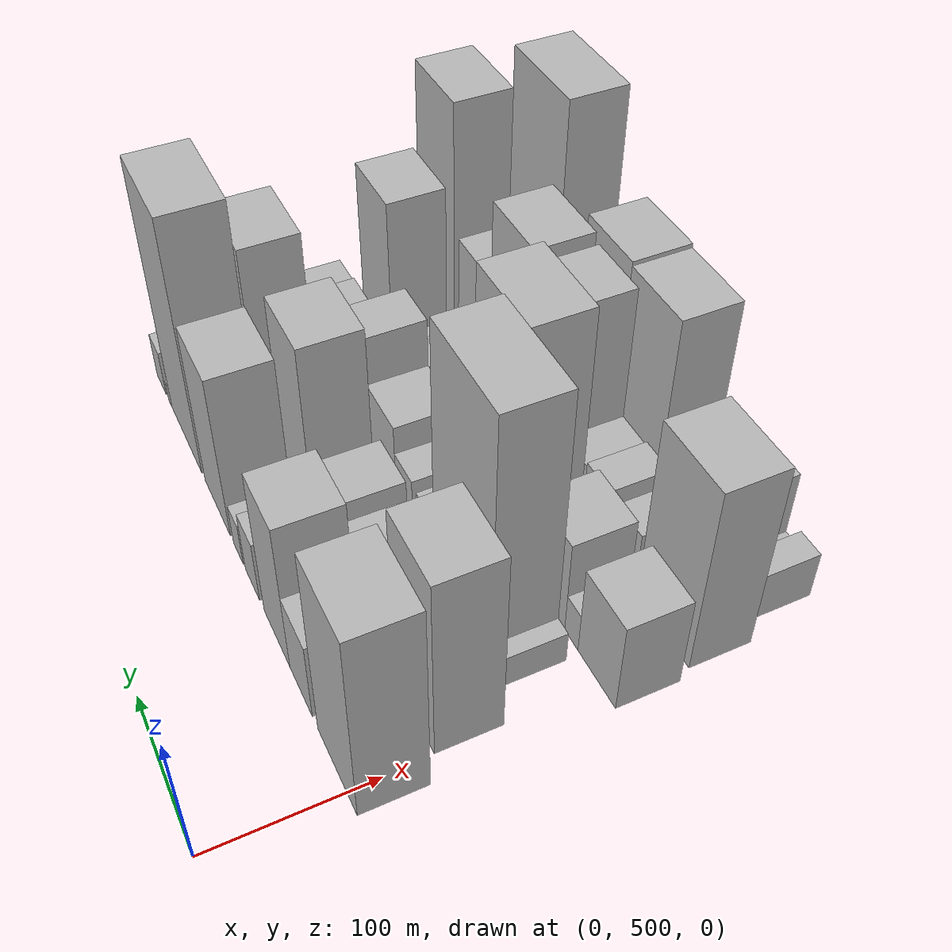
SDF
<sdf version="1.6">
 <world name="default">
  <model name="building_38">
   <static>1</static>
   <pose>100.0000 513.2755 0 0.000000 0.000000 0.000000</pose>
   <link name="link">
    <pose>0 0 72.00 0 0 0</pose>
    <collision name="collision"><geometry><box><size>40.0000 54.6386 144.0000</size></box></geometry></collision>
    <visual name="visual">
     <cast_shadows>0</cast_shadows>
     <geometry><box><size>40.0000 54.6386 144.0000</size></box></geometry>
     <material>
      <script>
       <uri>model://HANNAS_wall/materials/scripts</uri>
       <uri>model://HANNAS_wall/materials/textures</uri>
       <name>vrc/HANNAS_wall</name>
      </script>
     </material>
    </visual>
   </link>
  </model>
  <model name="building_39">
   <static>1</static>
   <pose>100.0000 565.7415 0 0.000000 0.000000 0.000000</pose>
   <link name="link">
    <pose>0 0 30.00 0 0 0</pose>
    <collision name="collision"><geometry><box><size>40.0000 34.2933 60.0000</size></box></geometry></collision>
    <visual name="visual">
     <cast_shadows>0</cast_shadows>
     <geometry><box><size>40.0000 34.2933 60.0000</size></box></geometry>
     <material>
      <script>
       <uri>model://HANNAS_wall/materials/scripts</uri>
       <uri>model://HANNAS_wall/materials/textures</uri>
       <name>vrc/HANNAS_wall</name>
      </script>
     </material>
    </visual>
   </link>
  </model>
  <model name="building_40">
   <static>1</static>
   <pose>100.0000 603.8647 0 0.000000 0.000000 0.000000</pose>
   <link name="link">
    <pose>0 0 57.00 0 0 0</pose>
    <collision name="collision"><geometry><box><size>40.0000 41.9532 114.0000</size></box></geometry></collision>
    <visual name="visual">
     <cast_shadows>0</cast_shadows>
     <geometry><box><size>40.0000 41.9532 114.0000</size></box></geometry>
     <material>
      <script>
       <uri>model://HANNAS_wall/materials/scripts</uri>
       <uri>model://HANNAS_wall/materials/textures</uri>
       <name>vrc/HANNAS_wall</name>
      </script>
     </material>
    </visual>
   </link>
  </model>
  <model name="building_41">
   <static>1</static>
   <pose>100.0000 645.3330 0 0.000000 0.000000 0.000000</pose>
   <link name="link">
    <pose>0 0 24.00 0 0 0</pose>
    <collision name="collision"><geometry><box><size>40.0000 24.9834 48.0000</size></box></geometry></collision>
    <visual name="visual">
     <cast_shadows>0</cast_shadows>
     <geometry><box><size>40.0000 24.9834 48.0000</size></box></geometry>
     <material>
      <script>
       <uri>model://HANNAS_wall/materials/scripts</uri>
       <uri>model://HANNAS_wall/materials/textures</uri>
       <name>vrc/HANNAS_wall</name>
      </script>
     </material>
    </visual>
   </link>
  </model>
  <model name="building_42">
   <static>1</static>
   <pose>100.0000 670.6582 0 0.000000 0.000000 0.000000</pose>
   <link name="link">
    <pose>0 0 16.50 0 0 0</pose>
    <collision name="collision"><geometry><box><size>40.0000 17.6672 33.0000</size></box></geometry></collision>
    <visual name="visual">
     <cast_shadows>0</cast_shadows>
     <geometry><box><size>40.0000 17.6672 33.0000</size></box></geometry>
     <material>
      <script>
       <uri>model://HANNAS_wall/materials/scripts</uri>
       <uri>model://HANNAS_wall/materials/textures</uri>
       <name>vrc/HANNAS_wall</name>
      </script>
     </material>
    </visual>
   </link>
  </model>
  <model name="building_43">
   <static>1</static>
   <pose>100.0000 710.0703 0 0.000000 0.000000 0.000000</pose>
   <link name="link">
    <pose>0 0 63.00 0 0 0</pose>
    <collision name="collision"><geometry><box><size>40.0000 49.1570 126.0000</size></box></geometry></collision>
    <visual name="visual">
     <cast_shadows>0</cast_shadows>
     <geometry><box><size>40.0000 49.1570 126.0000</size></box></geometry>
     <material>
      <script>
       <uri>model://HANNAS_wall/materials/scripts</uri>
       <uri>model://HANNAS_wall/materials/textures</uri>
       <name>vrc/HANNAS_wall</name>
      </script>
     </material>
    </visual>
   </link>
  </model>
  <model name="building_44">
   <static>1</static>
   <pose>100.0000 773.9399 0 0.000000 0.000000 0.000000</pose>
   <link name="link">
    <pose>0 0 97.50 0 0 0</pose>
    <collision name="collision"><geometry><box><size>40.0000 64.5821 195.0000</size></box></geometry></collision>
    <visual name="visual">
     <cast_shadows>0</cast_shadows>
     <geometry><box><size>40.0000 64.5821 195.0000</size></box></geometry>
     <material>
      <script>
       <uri>model://HANNAS_wall/materials/scripts</uri>
       <uri>model://HANNAS_wall/materials/textures</uri>
       <name>vrc/HANNAS_wall</name>
      </script>
     </material>
    </visual>
   </link>
  </model>
  <model name="building_45">
   <static>1</static>
   <pose>100.0000 810.0707 0 0.000000 0.000000 0.000000</pose>
   <link name="link">
    <pose>0 0 9.00 0 0 0</pose>
    <collision name="collision"><geometry><box><size>40.0000 7.6796 18.0000</size></box></geometry></collision>
    <visual name="visual">
     <cast_shadows>0</cast_shadows>
     <geometry><box><size>40.0000 7.6796 18.0000</size></box></geometry>
     <material>
      <script>
       <uri>model://HANNAS_wall/materials/scripts</uri>
       <uri>model://HANNAS_wall/materials/textures</uri>
       <name>vrc/HANNAS_wall</name>
      </script>
     </material>
    </visual>
   </link>
  </model>
  <model name="building_46">
   <static>1</static>
   <pose>100.0000 830.4887 0 0.000000 0.000000 0.000000</pose>
   <link name="link">
    <pose>0 0 18.00 0 0 0</pose>
    <collision name="collision"><geometry><box><size>40.0000 21.1564 36.0000</size></box></geometry></collision>
    <visual name="visual">
     <cast_shadows>0</cast_shadows>
     <geometry><box><size>40.0000 21.1564 36.0000</size></box></geometry>
     <material>
      <script>
       <uri>model://HANNAS_wall/materials/scripts</uri>
       <uri>model://HANNAS_wall/materials/textures</uri>
       <name>vrc/HANNAS_wall</name>
      </script>
     </material>
    </visual>
   </link>
  </model>
  <model name="building_86">
   <static>1</static>
   <pose>149.0000 526.6058 0 0.000000 0.000000 0.000000</pose>
   <link name="link">
    <pose>0 0 69.00 0 0 0</pose>
    <collision name="collision"><geometry><box><size>40.0000 51.0138 138.0000</size></box></geometry></collision>
    <visual name="visual">
     <cast_shadows>0</cast_shadows>
     <geometry><box><size>40.0000 51.0138 138.0000</size></box></geometry>
     <material>
      <script>
       <uri>model://HANNAS_wall/materials/scripts</uri>
       <uri>model://HANNAS_wall/materials/textures</uri>
       <name>vrc/HANNAS_wall</name>
      </script>
     </material>
    </visual>
   </link>
  </model>
  <model name="building_87">
   <static>1</static>
   <pose>149.0000 564.9639 0 0.000000 0.000000 0.000000</pose>
   <link name="link">
    <pose>0 0 10.50 0 0 0</pose>
    <collision name="collision"><geometry><box><size>40.0000 9.7024 21.0000</size></box></geometry></collision>
    <visual name="visual">
     <cast_shadows>0</cast_shadows>
     <geometry><box><size>40.0000 9.7024 21.0000</size></box></geometry>
     <material>
      <script>
       <uri>model://HANNAS_wall/materials/scripts</uri>
       <uri>model://HANNAS_wall/materials/textures</uri>
       <name>vrc/HANNAS_wall</name>
      </script>
     </material>
    </visual>
   </link>
  </model>
  <model name="building_88">
   <static>1</static>
   <pose>149.0000 578.7246 0 0.000000 0.000000 0.000000</pose>
   <link name="link">
    <pose>0 0 15.00 0 0 0</pose>
    <collision name="collision"><geometry><box><size>40.0000 17.8191 30.0000</size></box></geometry></collision>
    <visual name="visual">
     <cast_shadows>0</cast_shadows>
     <geometry><box><size>40.0000 17.8191 30.0000</size></box></geometry>
     <material>
      <script>
       <uri>model://HANNAS_wall/materials/scripts</uri>
       <uri>model://HANNAS_wall/materials/textures</uri>
       <name>vrc/HANNAS_wall</name>
      </script>
     </material>
    </visual>
   </link>
  </model>
  <model name="building_89">
   <static>1</static>
   <pose>149.0000 610.0657 0 0.000000 0.000000 0.000000</pose>
   <link name="link">
    <pose>0 0 25.50 0 0 0</pose>
    <collision name="collision"><geometry><box><size>40.0000 28.8632 51.0000</size></box></geometry></collision>
    <visual name="visual">
     <cast_shadows>0</cast_shadows>
     <geometry><box><size>40.0000 28.8632 51.0000</size></box></geometry>
     <material>
      <script>
       <uri>model://HANNAS_wall/materials/scripts</uri>
       <uri>model://HANNAS_wall/materials/textures</uri>
       <name>vrc/HANNAS_wall</name>
      </script>
     </material>
    </visual>
   </link>
  </model>
  <model name="building_90">
   <static>1</static>
   <pose>149.0000 642.5015 0 0.000000 0.000000 0.000000</pose>
   <link name="link">
    <pose>0 0 33.00 0 0 0</pose>
    <collision name="collision"><geometry><box><size>40.0000 36.0083 66.0000</size></box></geometry></collision>
    <visual name="visual">
     <cast_shadows>0</cast_shadows>
     <geometry><box><size>40.0000 36.0083 66.0000</size></box></geometry>
     <material>
      <script>
       <uri>model://HANNAS_wall/materials/scripts</uri>
       <uri>model://HANNAS_wall/materials/textures</uri>
       <name>vrc/HANNAS_wall</name>
      </script>
     </material>
    </visual>
   </link>
  </model>
  <model name="building_91">
   <static>1</static>
   <pose>149.0000 664.7505 0 0.000000 0.000000 0.000000</pose>
   <link name="link">
    <pose>0 0 9.00 0 0 0</pose>
    <collision name="collision"><geometry><box><size>40.0000 8.4897 18.0000</size></box></geometry></collision>
    <visual name="visual">
     <cast_shadows>0</cast_shadows>
     <geometry><box><size>40.0000 8.4897 18.0000</size></box></geometry>
     <material>
      <script>
       <uri>model://HANNAS_wall/materials/scripts</uri>
       <uri>model://HANNAS_wall/materials/textures</uri>
       <name>vrc/HANNAS_wall</name>
      </script>
     </material>
    </visual>
   </link>
  </model>
  <model name="building_92">
   <static>1</static>
   <pose>149.0000 699.7380 0 0.000000 0.000000 0.000000</pose>
   <link name="link">
    <pose>0 0 69.00 0 0 0</pose>
    <collision name="collision"><geometry><box><size>40.0000 49.4853 138.0000</size></box></geometry></collision>
    <visual name="visual">
     <cast_shadows>0</cast_shadows>
     <geometry><box><size>40.0000 49.4853 138.0000</size></box></geometry>
     <material>
      <script>
       <uri>model://HANNAS_wall/materials/scripts</uri>
       <uri>model://HANNAS_wall/materials/textures</uri>
       <name>vrc/HANNAS_wall</name>
      </script>
     </material>
    </visual>
   </link>
  </model>
  <model name="building_93">
   <static>1</static>
   <pose>149.0000 738.8691 0 0.000000 0.000000 0.000000</pose>
   <link name="link">
    <pose>0 0 24.00 0 0 0</pose>
    <collision name="collision"><geometry><box><size>40.0000 28.7769 48.0000</size></box></geometry></collision>
    <visual name="visual">
     <cast_shadows>0</cast_shadows>
     <geometry><box><size>40.0000 28.7769 48.0000</size></box></geometry>
     <material>
      <script>
       <uri>model://HANNAS_wall/materials/scripts</uri>
       <uri>model://HANNAS_wall/materials/textures</uri>
       <name>vrc/HANNAS_wall</name>
      </script>
     </material>
    </visual>
   </link>
  </model>
  <model name="building_94">
   <static>1</static>
   <pose>149.0000 764.1634 0 0.000000 0.000000 0.000000</pose>
   <link name="link">
    <pose>0 0 9.00 0 0 0</pose>
    <collision name="collision"><geometry><box><size>40.0000 7.8117 18.0000</size></box></geometry></collision>
    <visual name="visual">
     <cast_shadows>0</cast_shadows>
     <geometry><box><size>40.0000 7.8117 18.0000</size></box></geometry>
     <material>
      <script>
       <uri>model://HANNAS_wall/materials/scripts</uri>
       <uri>model://HANNAS_wall/materials/textures</uri>
       <name>vrc/HANNAS_wall</name>
      </script>
     </material>
    </visual>
   </link>
  </model>
  <model name="building_95">
   <static>1</static>
   <pose>149.0000 800.6272 0 0.000000 0.000000 0.000000</pose>
   <link name="link">
    <pose>0 0 67.50 0 0 0</pose>
    <collision name="collision"><geometry><box><size>40.0000 53.1159 135.0000</size></box></geometry></collision>
    <visual name="visual">
     <cast_shadows>0</cast_shadows>
     <geometry><box><size>40.0000 53.1159 135.0000</size></box></geometry>
     <material>
      <script>
       <uri>model://HANNAS_wall/materials/scripts</uri>
       <uri>model://HANNAS_wall/materials/textures</uri>
       <name>vrc/HANNAS_wall</name>
      </script>
     </material>
    </visual>
   </link>
  </model>
  <model name="building_96">
   <static>1</static>
   <pose>149.0000 844.7569 0 0.000000 0.000000 0.000000</pose>
   <link name="link">
    <pose>0 0 31.50 0 0 0</pose>
    <collision name="collision"><geometry><box><size>40.0000 35.1435 63.0000</size></box></geometry></collision>
    <visual name="visual">
     <cast_shadows>0</cast_shadows>
     <geometry><box><size>40.0000 35.1435 63.0000</size></box></geometry>
     <material>
      <script>
       <uri>model://HANNAS_wall/materials/scripts</uri>
       <uri>model://HANNAS_wall/materials/textures</uri>
       <name>vrc/HANNAS_wall</name>
      </script>
     </material>
    </visual>
   </link>
  </model>
  <model name="building_139">
   <static>1</static>
   <pose>198.0000 528.4345 0 0.000000 0.000000 0.000000</pose>
   <link name="link">
    <pose>0 0 12.00 0 0 0</pose>
    <collision name="collision"><geometry><box><size>40.0000 11.4349 24.0000</size></box></geometry></collision>
    <visual name="visual">
     <cast_shadows>0</cast_shadows>
     <geometry><box><size>40.0000 11.4349 24.0000</size></box></geometry>
     <material>
      <script>
       <uri>model://HANNAS_wall/materials/scripts</uri>
       <uri>model://HANNAS_wall/materials/textures</uri>
       <name>vrc/HANNAS_wall</name>
      </script>
     </material>
    </visual>
   </link>
  </model>
  <model name="building_140">
   <static>1</static>
   <pose>198.0000 571.3105 0 0.000000 0.000000 0.000000</pose>
   <link name="link">
    <pose>0 0 97.50 0 0 0</pose>
    <collision name="collision"><geometry><box><size>40.0000 74.3170 195.0000</size></box></geometry></collision>
    <visual name="visual">
     <cast_shadows>0</cast_shadows>
     <geometry><box><size>40.0000 74.3170 195.0000</size></box></geometry>
     <material>
      <script>
       <uri>model://HANNAS_wall/materials/scripts</uri>
       <uri>model://HANNAS_wall/materials/textures</uri>
       <name>vrc/HANNAS_wall</name>
      </script>
     </material>
    </visual>
   </link>
  </model>
  <model name="building_141">
   <static>1</static>
   <pose>198.0000 620.4138 0 0.000000 0.000000 0.000000</pose>
   <link name="link">
    <pose>0 0 22.50 0 0 0</pose>
    <collision name="collision"><geometry><box><size>40.0000 23.8895 45.0000</size></box></geometry></collision>
    <visual name="visual">
     <cast_shadows>0</cast_shadows>
     <geometry><box><size>40.0000 23.8895 45.0000</size></box></geometry>
     <material>
      <script>
       <uri>model://HANNAS_wall/materials/scripts</uri>
       <uri>model://HANNAS_wall/materials/textures</uri>
       <name>vrc/HANNAS_wall</name>
      </script>
     </material>
    </visual>
   </link>
  </model>
  <model name="building_142">
   <static>1</static>
   <pose>198.0000 650.6775 0 0.000000 0.000000 0.000000</pose>
   <link name="link">
    <pose>0 0 24.00 0 0 0</pose>
    <collision name="collision"><geometry><box><size>40.0000 24.6379 48.0000</size></box></geometry></collision>
    <visual name="visual">
     <cast_shadows>0</cast_shadows>
     <geometry><box><size>40.0000 24.6379 48.0000</size></box></geometry>
     <material>
      <script>
       <uri>model://HANNAS_wall/materials/scripts</uri>
       <uri>model://HANNAS_wall/materials/textures</uri>
       <name>vrc/HANNAS_wall</name>
      </script>
     </material>
    </visual>
   </link>
  </model>
  <model name="building_143">
   <static>1</static>
   <pose>198.0000 682.9503 0 0.000000 0.000000 0.000000</pose>
   <link name="link">
    <pose>0 0 34.50 0 0 0</pose>
    <collision name="collision"><geometry><box><size>40.0000 39.9077 69.0000</size></box></geometry></collision>
    <visual name="visual">
     <cast_shadows>0</cast_shadows>
     <geometry><box><size>40.0000 39.9077 69.0000</size></box></geometry>
     <material>
      <script>
       <uri>model://HANNAS_wall/materials/scripts</uri>
       <uri>model://HANNAS_wall/materials/textures</uri>
       <name>vrc/HANNAS_wall</name>
      </script>
     </material>
    </visual>
   </link>
  </model>
  <model name="building_144">
   <static>1</static>
   <pose>198.0000 718.8306 0 0.000000 0.000000 0.000000</pose>
   <link name="link">
    <pose>0 0 52.50 0 0 0</pose>
    <collision name="collision"><geometry><box><size>40.0000 31.8530 105.0000</size></box></geometry></collision>
    <visual name="visual">
     <cast_shadows>0</cast_shadows>
     <geometry><box><size>40.0000 31.8530 105.0000</size></box></geometry>
     <material>
      <script>
       <uri>model://HANNAS_wall/materials/scripts</uri>
       <uri>model://HANNAS_wall/materials/textures</uri>
       <name>vrc/HANNAS_wall</name>
      </script>
     </material>
    </visual>
   </link>
  </model>
  <model name="building_145">
   <static>1</static>
   <pose>198.0000 758.7041 0 0.000000 0.000000 0.000000</pose>
   <link name="link">
    <pose>0 0 33.00 0 0 0</pose>
    <collision name="collision"><geometry><box><size>40.0000 33.8938 66.0000</size></box></geometry></collision>
    <visual name="visual">
     <cast_shadows>0</cast_shadows>
     <geometry><box><size>40.0000 33.8938 66.0000</size></box></geometry>
     <material>
      <script>
       <uri>model://HANNAS_wall/materials/scripts</uri>
       <uri>model://HANNAS_wall/materials/textures</uri>
       <name>vrc/HANNAS_wall</name>
      </script>
     </material>
    </visual>
   </link>
  </model>
  <model name="building_146">
   <static>1</static>
   <pose>198.0000 786.6046 0 0.000000 0.000000 0.000000</pose>
   <link name="link">
    <pose>0 0 21.00 0 0 0</pose>
    <collision name="collision"><geometry><box><size>40.0000 21.9072 42.0000</size></box></geometry></collision>
    <visual name="visual">
     <cast_shadows>0</cast_shadows>
     <geometry><box><size>40.0000 21.9072 42.0000</size></box></geometry>
     <material>
      <script>
       <uri>model://HANNAS_wall/materials/scripts</uri>
       <uri>model://HANNAS_wall/materials/textures</uri>
       <name>vrc/HANNAS_wall</name>
      </script>
     </material>
    </visual>
   </link>
  </model>
  <model name="building_147">
   <static>1</static>
   <pose>198.0000 810.8468 0 0.000000 0.000000 0.000000</pose>
   <link name="link">
    <pose>0 0 24.00 0 0 0</pose>
    <collision name="collision"><geometry><box><size>40.0000 26.5773 48.0000</size></box></geometry></collision>
    <visual name="visual">
     <cast_shadows>0</cast_shadows>
     <geometry><box><size>40.0000 26.5773 48.0000</size></box></geometry>
     <material>
      <script>
       <uri>model://HANNAS_wall/materials/scripts</uri>
       <uri>model://HANNAS_wall/materials/textures</uri>
       <name>vrc/HANNAS_wall</name>
      </script>
     </material>
    </visual>
   </link>
  </model>
  <model name="building_148">
   <static>1</static>
   <pose>198.0000 837.0912 0 0.000000 0.000000 0.000000</pose>
   <link name="link">
    <pose>0 0 22.50 0 0 0</pose>
    <collision name="collision"><geometry><box><size>40.0000 25.9115 45.0000</size></box></geometry></collision>
    <visual name="visual">
     <cast_shadows>0</cast_shadows>
     <geometry><box><size>40.0000 25.9115 45.0000</size></box></geometry>
     <material>
      <script>
       <uri>model://HANNAS_wall/materials/scripts</uri>
       <uri>model://HANNAS_wall/materials/textures</uri>
       <name>vrc/HANNAS_wall</name>
      </script>
     </material>
    </visual>
   </link>
  </model>
  <model name="building_190">
   <static>1</static>
   <pose>247.0000 505.2227 0 0.000000 0.000000 0.000000</pose>
   <link name="link">
    <pose>0 0 34.50 0 0 0</pose>
    <collision name="collision"><geometry><box><size>40.0000 41.0361 69.0000</size></box></geometry></collision>
    <visual name="visual">
     <cast_shadows>0</cast_shadows>
     <geometry><box><size>40.0000 41.0361 69.0000</size></box></geometry>
     <material>
      <script>
       <uri>model://HANNAS_wall/materials/scripts</uri>
       <uri>model://HANNAS_wall/materials/textures</uri>
       <name>vrc/HANNAS_wall</name>
      </script>
     </material>
    </visual>
   </link>
  </model>
  <model name="building_191">
   <static>1</static>
   <pose>247.0000 533.3025 0 0.000000 0.000000 0.000000</pose>
   <link name="link">
    <pose>0 0 15.00 0 0 0</pose>
    <collision name="collision"><geometry><box><size>40.0000 15.1236 30.0000</size></box></geometry></collision>
    <visual name="visual">
     <cast_shadows>0</cast_shadows>
     <geometry><box><size>40.0000 15.1236 30.0000</size></box></geometry>
     <material>
      <script>
       <uri>model://HANNAS_wall/materials/scripts</uri>
       <uri>model://HANNAS_wall/materials/textures</uri>
       <name>vrc/HANNAS_wall</name>
      </script>
     </material>
    </visual>
   </link>
  </model>
  <model name="building_192">
   <static>1</static>
   <pose>247.0000 561.8181 0 0.000000 0.000000 0.000000</pose>
   <link name="link">
    <pose>0 0 36.00 0 0 0</pose>
    <collision name="collision"><geometry><box><size>40.0000 41.9075 72.0000</size></box></geometry></collision>
    <visual name="visual">
     <cast_shadows>0</cast_shadows>
     <geometry><box><size>40.0000 41.9075 72.0000</size></box></geometry>
     <material>
      <script>
       <uri>model://HANNAS_wall/materials/scripts</uri>
       <uri>model://HANNAS_wall/materials/textures</uri>
       <name>vrc/HANNAS_wall</name>
      </script>
     </material>
    </visual>
   </link>
  </model>
  <model name="building_193">
   <static>1</static>
   <pose>247.0000 593.9448 0 0.000000 0.000000 0.000000</pose>
   <link name="link">
    <pose>0 0 9.00 0 0 0</pose>
    <collision name="collision"><geometry><box><size>40.0000 8.3460 18.0000</size></box></geometry></collision>
    <visual name="visual">
     <cast_shadows>0</cast_shadows>
     <geometry><box><size>40.0000 8.3460 18.0000</size></box></geometry>
     <material>
      <script>
       <uri>model://HANNAS_wall/materials/scripts</uri>
       <uri>model://HANNAS_wall/materials/textures</uri>
       <name>vrc/HANNAS_wall</name>
      </script>
     </material>
    </visual>
   </link>
  </model>
  <model name="building_194">
   <static>1</static>
   <pose>247.0000 627.9919 0 0.000000 0.000000 0.000000</pose>
   <link name="link">
    <pose>0 0 88.50 0 0 0</pose>
    <collision name="collision"><geometry><box><size>40.0000 59.7482 177.0000</size></box></geometry></collision>
    <visual name="visual">
     <cast_shadows>0</cast_shadows>
     <geometry><box><size>40.0000 59.7482 177.0000</size></box></geometry>
     <material>
      <script>
       <uri>model://HANNAS_wall/materials/scripts</uri>
       <uri>model://HANNAS_wall/materials/textures</uri>
       <name>vrc/HANNAS_wall</name>
      </script>
     </material>
    </visual>
   </link>
  </model>
  <model name="building_195">
   <static>1</static>
   <pose>247.0000 678.8222 0 0.000000 0.000000 0.000000</pose>
   <link name="link">
    <pose>0 0 40.50 0 0 0</pose>
    <collision name="collision"><geometry><box><size>40.0000 41.9125 81.0000</size></box></geometry></collision>
    <visual name="visual">
     <cast_shadows>0</cast_shadows>
     <geometry><box><size>40.0000 41.9125 81.0000</size></box></geometry>
     <material>
      <script>
       <uri>model://HANNAS_wall/materials/scripts</uri>
       <uri>model://HANNAS_wall/materials/textures</uri>
       <name>vrc/HANNAS_wall</name>
      </script>
     </material>
    </visual>
   </link>
  </model>
  <model name="building_196">
   <static>1</static>
   <pose>247.0000 712.7655 0 0.000000 0.000000 0.000000</pose>
   <link name="link">
    <pose>0 0 19.50 0 0 0</pose>
    <collision name="collision"><geometry><box><size>40.0000 19.9741 39.0000</size></box></geometry></collision>
    <visual name="visual">
     <cast_shadows>0</cast_shadows>
     <geometry><box><size>40.0000 19.9741 39.0000</size></box></geometry>
     <material>
      <script>
       <uri>model://HANNAS_wall/materials/scripts</uri>
       <uri>model://HANNAS_wall/materials/textures</uri>
       <name>vrc/HANNAS_wall</name>
      </script>
     </material>
    </visual>
   </link>
  </model>
  <model name="building_197">
   <static>1</static>
   <pose>247.0000 735.8609 0 0.000000 0.000000 0.000000</pose>
   <link name="link">
    <pose>0 0 24.00 0 0 0</pose>
    <collision name="collision"><geometry><box><size>40.0000 26.2167 48.0000</size></box></geometry></collision>
    <visual name="visual">
     <cast_shadows>0</cast_shadows>
     <geometry><box><size>40.0000 26.2167 48.0000</size></box></geometry>
     <material>
      <script>
       <uri>model://HANNAS_wall/materials/scripts</uri>
       <uri>model://HANNAS_wall/materials/textures</uri>
       <name>vrc/HANNAS_wall</name>
      </script>
     </material>
    </visual>
   </link>
  </model>
  <model name="building_198">
   <static>1</static>
   <pose>247.0000 764.7827 0 0.000000 0.000000 0.000000</pose>
   <link name="link">
    <pose>0 0 16.50 0 0 0</pose>
    <collision name="collision"><geometry><box><size>40.0000 17.6268 33.0000</size></box></geometry></collision>
    <visual name="visual">
     <cast_shadows>0</cast_shadows>
     <geometry><box><size>40.0000 17.6268 33.0000</size></box></geometry>
     <material>
      <script>
       <uri>model://HANNAS_wall/materials/scripts</uri>
       <uri>model://HANNAS_wall/materials/textures</uri>
       <name>vrc/HANNAS_wall</name>
      </script>
     </material>
    </visual>
   </link>
  </model>
  <model name="building_199">
   <static>1</static>
   <pose>247.0000 807.3917 0 0.000000 0.000000 0.000000</pose>
   <link name="link">
    <pose>0 0 66.00 0 0 0</pose>
    <collision name="collision"><geometry><box><size>40.0000 49.5913 132.0000</size></box></geometry></collision>
    <visual name="visual">
     <cast_shadows>0</cast_shadows>
     <geometry><box><size>40.0000 49.5913 132.0000</size></box></geometry>
     <material>
      <script>
       <uri>model://HANNAS_wall/materials/scripts</uri>
       <uri>model://HANNAS_wall/materials/textures</uri>
       <name>vrc/HANNAS_wall</name>
      </script>
     </material>
    </visual>
   </link>
  </model>
  <model name="building_240">
   <static>1</static>
   <pose>296.0000 517.2442 0 0.000000 0.000000 0.000000</pose>
   <link name="link">
    <pose>0 0 70.50 0 0 0</pose>
    <collision name="collision"><geometry><box><size>40.0000 54.8721 141.0000</size></box></geometry></collision>
    <visual name="visual">
     <cast_shadows>0</cast_shadows>
     <geometry><box><size>40.0000 54.8721 141.0000</size></box></geometry>
     <material>
      <script>
       <uri>model://HANNAS_wall/materials/scripts</uri>
       <uri>model://HANNAS_wall/materials/textures</uri>
       <name>vrc/HANNAS_wall</name>
      </script>
     </material>
    </visual>
   </link>
  </model>
  <model name="building_241">
   <static>1</static>
   <pose>296.0000 560.8977 0 0.000000 0.000000 0.000000</pose>
   <link name="link">
    <pose>0 0 24.00 0 0 0</pose>
    <collision name="collision"><geometry><box><size>40.0000 26.4348 48.0000</size></box></geometry></collision>
    <visual name="visual">
     <cast_shadows>0</cast_shadows>
     <geometry><box><size>40.0000 26.4348 48.0000</size></box></geometry>
     <material>
      <script>
       <uri>model://HANNAS_wall/materials/scripts</uri>
       <uri>model://HANNAS_wall/materials/textures</uri>
       <name>vrc/HANNAS_wall</name>
      </script>
     </material>
    </visual>
   </link>
  </model>
  <model name="building_242">
   <static>1</static>
   <pose>296.0000 578.8179 0 0.000000 0.000000 0.000000</pose>
   <link name="link">
    <pose>0 0 10.50 0 0 0</pose>
    <collision name="collision"><geometry><box><size>40.0000 9.4055 21.0000</size></box></geometry></collision>
    <visual name="visual">
     <cast_shadows>0</cast_shadows>
     <geometry><box><size>40.0000 9.4055 21.0000</size></box></geometry>
     <material>
      <script>
       <uri>model://HANNAS_wall/materials/scripts</uri>
       <uri>model://HANNAS_wall/materials/textures</uri>
       <name>vrc/HANNAS_wall</name>
      </script>
     </material>
    </visual>
   </link>
  </model>
  <model name="building_243">
   <static>1</static>
   <pose>296.0000 596.2431 0 0.000000 0.000000 0.000000</pose>
   <link name="link">
    <pose>0 0 24.00 0 0 0</pose>
    <collision name="collision"><geometry><box><size>40.0000 25.4448 48.0000</size></box></geometry></collision>
    <visual name="visual">
     <cast_shadows>0</cast_shadows>
     <geometry><box><size>40.0000 25.4448 48.0000</size></box></geometry>
     <material>
      <script>
       <uri>model://HANNAS_wall/materials/scripts</uri>
       <uri>model://HANNAS_wall/materials/textures</uri>
       <name>vrc/HANNAS_wall</name>
      </script>
     </material>
    </visual>
   </link>
  </model>
  <model name="building_244">
   <static>1</static>
   <pose>296.0000 622.3273 0 0.000000 0.000000 0.000000</pose>
   <link name="link">
    <pose>0 0 22.50 0 0 0</pose>
    <collision name="collision"><geometry><box><size>40.0000 26.7237 45.0000</size></box></geometry></collision>
    <visual name="visual">
     <cast_shadows>0</cast_shadows>
     <geometry><box><size>40.0000 26.7237 45.0000</size></box></geometry>
     <material>
      <script>
       <uri>model://HANNAS_wall/materials/scripts</uri>
       <uri>model://HANNAS_wall/materials/textures</uri>
       <name>vrc/HANNAS_wall</name>
      </script>
     </material>
    </visual>
   </link>
  </model>
  <model name="building_245">
   <static>1</static>
   <pose>296.0000 657.5974 0 0.000000 0.000000 0.000000</pose>
   <link name="link">
    <pose>0 0 72.00 0 0 0</pose>
    <collision name="collision"><geometry><box><size>40.0000 43.8165 144.0000</size></box></geometry></collision>
    <visual name="visual">
     <cast_shadows>0</cast_shadows>
     <geometry><box><size>40.0000 43.8165 144.0000</size></box></geometry>
     <material>
      <script>
       <uri>model://HANNAS_wall/materials/scripts</uri>
       <uri>model://HANNAS_wall/materials/textures</uri>
       <name>vrc/HANNAS_wall</name>
      </script>
     </material>
    </visual>
   </link>
  </model>
  <model name="building_246">
   <static>1</static>
   <pose>296.0000 709.5736 0 0.000000 0.000000 0.000000</pose>
   <link name="link">
    <pose>0 0 75.00 0 0 0</pose>
    <collision name="collision"><geometry><box><size>40.0000 52.1359 150.0000</size></box></geometry></collision>
    <visual name="visual">
     <cast_shadows>0</cast_shadows>
     <geometry><box><size>40.0000 52.1359 150.0000</size></box></geometry>
     <material>
      <script>
       <uri>model://HANNAS_wall/materials/scripts</uri>
       <uri>model://HANNAS_wall/materials/textures</uri>
       <name>vrc/HANNAS_wall</name>
      </script>
     </material>
    </visual>
   </link>
  </model>
  <model name="building_247">
   <static>1</static>
   <pose>296.0000 759.2678 0 0.000000 0.000000 0.000000</pose>
   <link name="link">
    <pose>0 0 45.00 0 0 0</pose>
    <collision name="collision"><geometry><box><size>40.0000 47.2525 90.0000</size></box></geometry></collision>
    <visual name="visual">
     <cast_shadows>0</cast_shadows>
     <geometry><box><size>40.0000 47.2525 90.0000</size></box></geometry>
     <material>
      <script>
       <uri>model://HANNAS_wall/materials/scripts</uri>
       <uri>model://HANNAS_wall/materials/textures</uri>
       <name>vrc/HANNAS_wall</name>
      </script>
     </material>
    </visual>
   </link>
  </model>
  <model name="building_248">
   <static>1</static>
   <pose>296.0000 818.2573 0 0.000000 0.000000 0.000000</pose>
   <link name="link">
    <pose>0 0 93.00 0 0 0</pose>
    <collision name="collision"><geometry><box><size>40.0000 56.7265 186.0000</size></box></geometry></collision>
    <visual name="visual">
     <cast_shadows>0</cast_shadows>
     <geometry><box><size>40.0000 56.7265 186.0000</size></box></geometry>
     <material>
      <script>
       <uri>model://HANNAS_wall/materials/scripts</uri>
       <uri>model://HANNAS_wall/materials/textures</uri>
       <name>vrc/HANNAS_wall</name>
      </script>
     </material>
    </visual>
   </link>
  </model>
  <model name="building_289">
   <static>1</static>
   <pose>345.0000 511.9206 0 0.000000 0.000000 0.000000</pose>
   <link name="link">
    <pose>0 0 18.00 0 0 0</pose>
    <collision name="collision"><geometry><box><size>40.0000 18.7680 36.0000</size></box></geometry></collision>
    <visual name="visual">
     <cast_shadows>0</cast_shadows>
     <geometry><box><size>40.0000 18.7680 36.0000</size></box></geometry>
     <material>
      <script>
       <uri>model://HANNAS_wall/materials/scripts</uri>
       <uri>model://HANNAS_wall/materials/textures</uri>
       <name>vrc/HANNAS_wall</name>
      </script>
     </material>
    </visual>
   </link>
  </model>
  <model name="building_290">
   <static>1</static>
   <pose>345.0000 526.8495 0 0.000000 0.000000 0.000000</pose>
   <link name="link">
    <pose>0 0 12.00 0 0 0</pose>
    <collision name="collision"><geometry><box><size>40.0000 11.0899 24.0000</size></box></geometry></collision>
    <visual name="visual">
     <cast_shadows>0</cast_shadows>
     <geometry><box><size>40.0000 11.0899 24.0000</size></box></geometry>
     <material>
      <script>
       <uri>model://HANNAS_wall/materials/scripts</uri>
       <uri>model://HANNAS_wall/materials/textures</uri>
       <name>vrc/HANNAS_wall</name>
      </script>
     </material>
    </visual>
   </link>
  </model>
  <model name="building_291">
   <static>1</static>
   <pose>345.0000 551.2019 0 0.000000 0.000000 0.000000</pose>
   <link name="link">
    <pose>0 0 36.00 0 0 0</pose>
    <collision name="collision"><geometry><box><size>40.0000 37.6149 72.0000</size></box></geometry></collision>
    <visual name="visual">
     <cast_shadows>0</cast_shadows>
     <geometry><box><size>40.0000 37.6149 72.0000</size></box></geometry>
     <material>
      <script>
       <uri>model://HANNAS_wall/materials/scripts</uri>
       <uri>model://HANNAS_wall/materials/textures</uri>
       <name>vrc/HANNAS_wall</name>
      </script>
     </material>
    </visual>
   </link>
  </model>
  <model name="building_292">
   <static>1</static>
   <pose>345.0000 581.0637 0 0.000000 0.000000 0.000000</pose>
   <link name="link">
    <pose>0 0 21.00 0 0 0</pose>
    <collision name="collision"><geometry><box><size>40.0000 22.1086 42.0000</size></box></geometry></collision>
    <visual name="visual">
     <cast_shadows>0</cast_shadows>
     <geometry><box><size>40.0000 22.1086 42.0000</size></box></geometry>
     <material>
      <script>
       <uri>model://HANNAS_wall/materials/scripts</uri>
       <uri>model://HANNAS_wall/materials/textures</uri>
       <name>vrc/HANNAS_wall</name>
      </script>
     </material>
    </visual>
   </link>
  </model>
  <model name="building_293">
   <static>1</static>
   <pose>345.0000 598.3029 0 0.000000 0.000000 0.000000</pose>
   <link name="link">
    <pose>0 0 13.50 0 0 0</pose>
    <collision name="collision"><geometry><box><size>40.0000 12.3697 27.0000</size></box></geometry></collision>
    <visual name="visual">
     <cast_shadows>0</cast_shadows>
     <geometry><box><size>40.0000 12.3697 27.0000</size></box></geometry>
     <material>
      <script>
       <uri>model://HANNAS_wall/materials/scripts</uri>
       <uri>model://HANNAS_wall/materials/textures</uri>
       <name>vrc/HANNAS_wall</name>
      </script>
     </material>
    </visual>
   </link>
  </model>
  <model name="building_294">
   <static>1</static>
   <pose>345.0000 630.9244 0 0.000000 0.000000 0.000000</pose>
   <link name="link">
    <pose>0 0 70.50 0 0 0</pose>
    <collision name="collision"><geometry><box><size>40.0000 52.8734 141.0000</size></box></geometry></collision>
    <visual name="visual">
     <cast_shadows>0</cast_shadows>
     <geometry><box><size>40.0000 52.8734 141.0000</size></box></geometry>
     <material>
      <script>
       <uri>model://HANNAS_wall/materials/scripts</uri>
       <uri>model://HANNAS_wall/materials/textures</uri>
       <name>vrc/HANNAS_wall</name>
      </script>
     </material>
    </visual>
   </link>
  </model>
  <model name="building_295">
   <static>1</static>
   <pose>345.0000 682.4771 0 0.000000 0.000000 0.000000</pose>
   <link name="link">
    <pose>0 0 72.00 0 0 0</pose>
    <collision name="collision"><geometry><box><size>40.0000 50.2319 144.0000</size></box></geometry></collision>
    <visual name="visual">
     <cast_shadows>0</cast_shadows>
     <geometry><box><size>40.0000 50.2319 144.0000</size></box></geometry>
     <material>
      <script>
       <uri>model://HANNAS_wall/materials/scripts</uri>
       <uri>model://HANNAS_wall/materials/textures</uri>
       <name>vrc/HANNAS_wall</name>
      </script>
     </material>
    </visual>
   </link>
  </model>
  <model name="building_296">
   <static>1</static>
   <pose>345.0000 726.2594 0 0.000000 0.000000 0.000000</pose>
   <link name="link">
    <pose>0 0 19.50 0 0 0</pose>
    <collision name="collision"><geometry><box><size>40.0000 23.3327 39.0000</size></box></geometry></collision>
    <visual name="visual">
     <cast_shadows>0</cast_shadows>
     <geometry><box><size>40.0000 23.3327 39.0000</size></box></geometry>
     <material>
      <script>
       <uri>model://HANNAS_wall/materials/scripts</uri>
       <uri>model://HANNAS_wall/materials/textures</uri>
       <name>vrc/HANNAS_wall</name>
      </script>
     </material>
    </visual>
   </link>
  </model>
  <model name="building_297">
   <static>1</static>
   <pose>345.0000 772.4758 0 0.000000 0.000000 0.000000</pose>
   <link name="link">
    <pose>0 0 102.00 0 0 0</pose>
    <collision name="collision"><geometry><box><size>40.0000 69.1002 204.0000</size></box></geometry></collision>
    <visual name="visual">
     <cast_shadows>0</cast_shadows>
     <geometry><box><size>40.0000 69.1002 204.0000</size></box></geometry>
     <material>
      <script>
       <uri>model://HANNAS_wall/materials/scripts</uri>
       <uri>model://HANNAS_wall/materials/textures</uri>
       <name>vrc/HANNAS_wall</name>
      </script>
     </material>
    </visual>
   </link>
  </model>
  <model name="building_298">
   <static>1</static>
   <pose>345.0000 817.9899 0 0.000000 0.000000 0.000000</pose>
   <link name="link">
    <pose>0 0 21.00 0 0 0</pose>
    <collision name="collision"><geometry><box><size>40.0000 21.9281 42.0000</size></box></geometry></collision>
    <visual name="visual">
     <cast_shadows>0</cast_shadows>
     <geometry><box><size>40.0000 21.9281 42.0000</size></box></geometry>
     <material>
      <script>
       <uri>model://HANNAS_wall/materials/scripts</uri>
       <uri>model://HANNAS_wall/materials/textures</uri>
       <name>vrc/HANNAS_wall</name>
      </script>
     </material>
    </visual>
   </link>
  </model>
  <model name="building_299">
   <static>1</static>
   <pose>345.0000 844.2560 0 0.000000 0.000000 0.000000</pose>
   <link name="link">
    <pose>0 0 30.00 0 0 0</pose>
    <collision name="collision"><geometry><box><size>40.0000 30.6040 60.0000</size></box></geometry></collision>
    <visual name="visual">
     <cast_shadows>0</cast_shadows>
     <geometry><box><size>40.0000 30.6040 60.0000</size></box></geometry>
     <material>
      <script>
       <uri>model://HANNAS_wall/materials/scripts</uri>
       <uri>model://HANNAS_wall/materials/textures</uri>
       <name>vrc/HANNAS_wall</name>
      </script>
     </material>
    </visual>
   </link>
  </model>
 </world>
</sdf>
